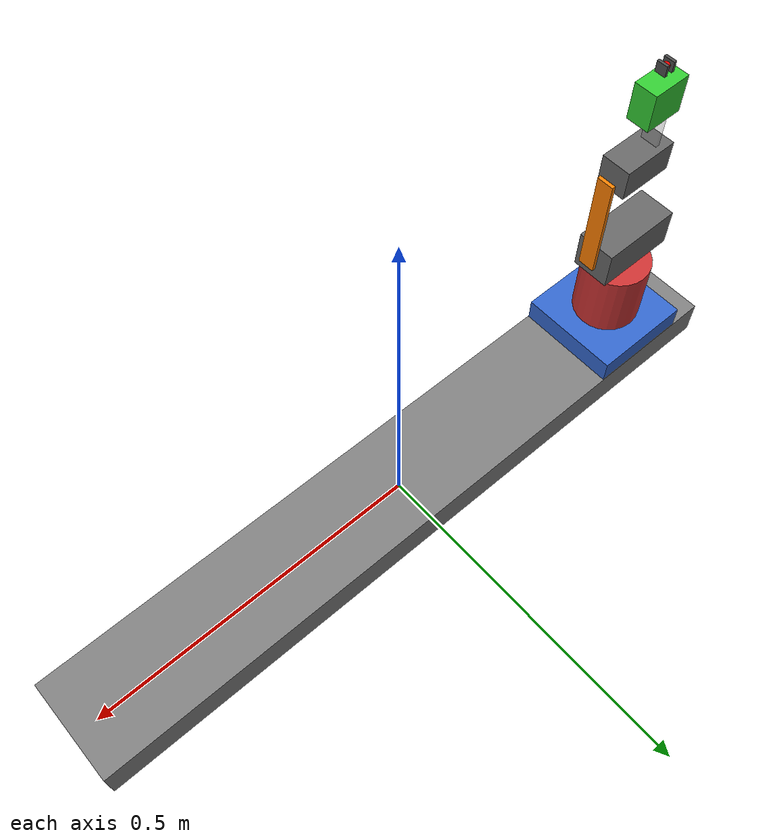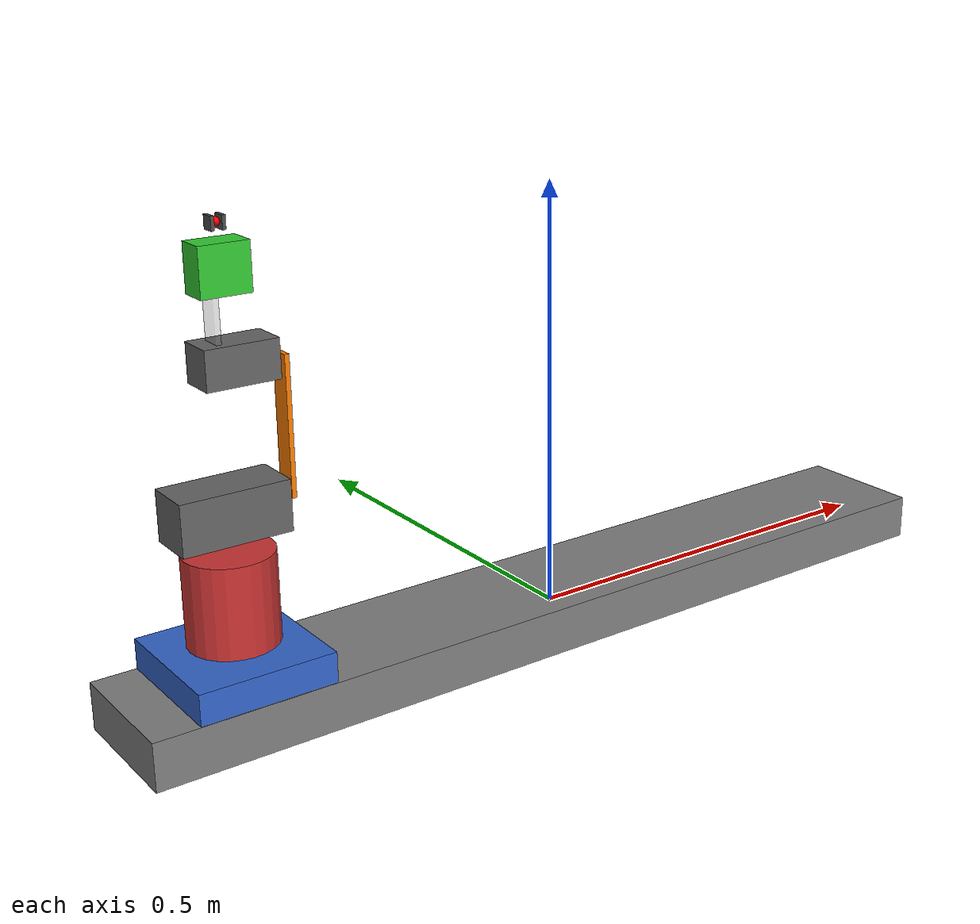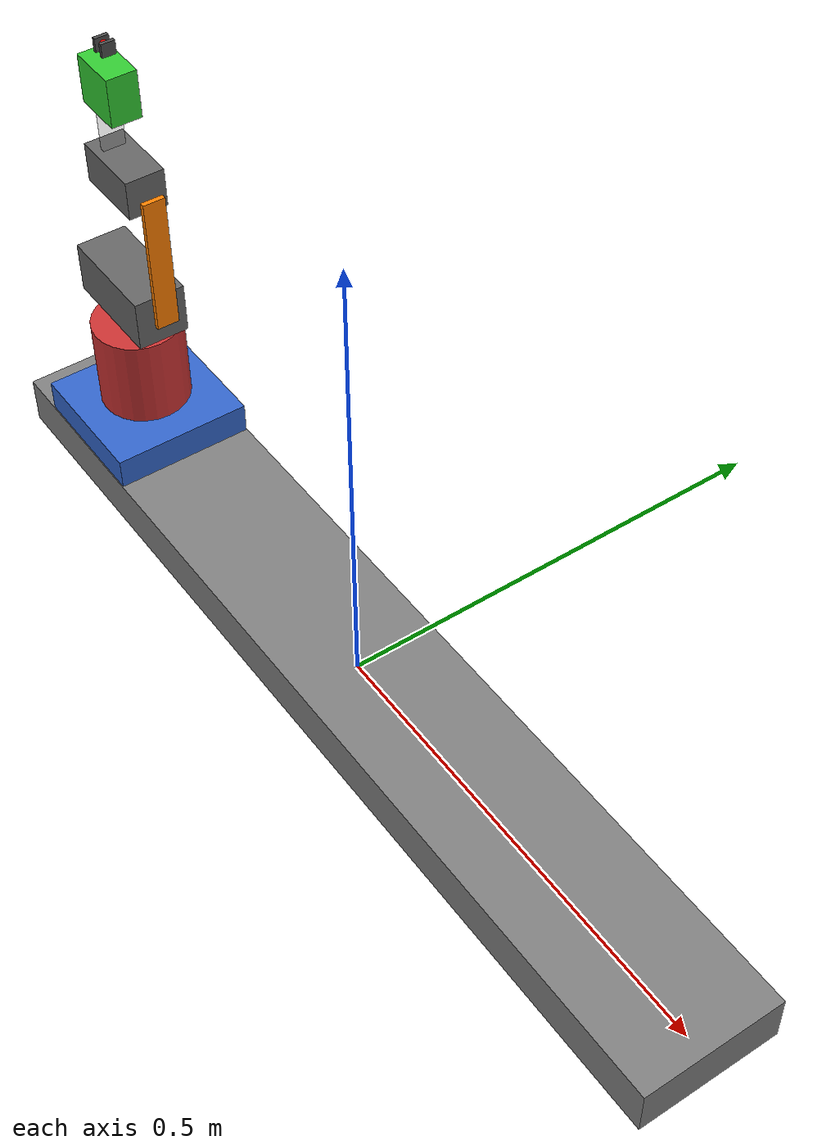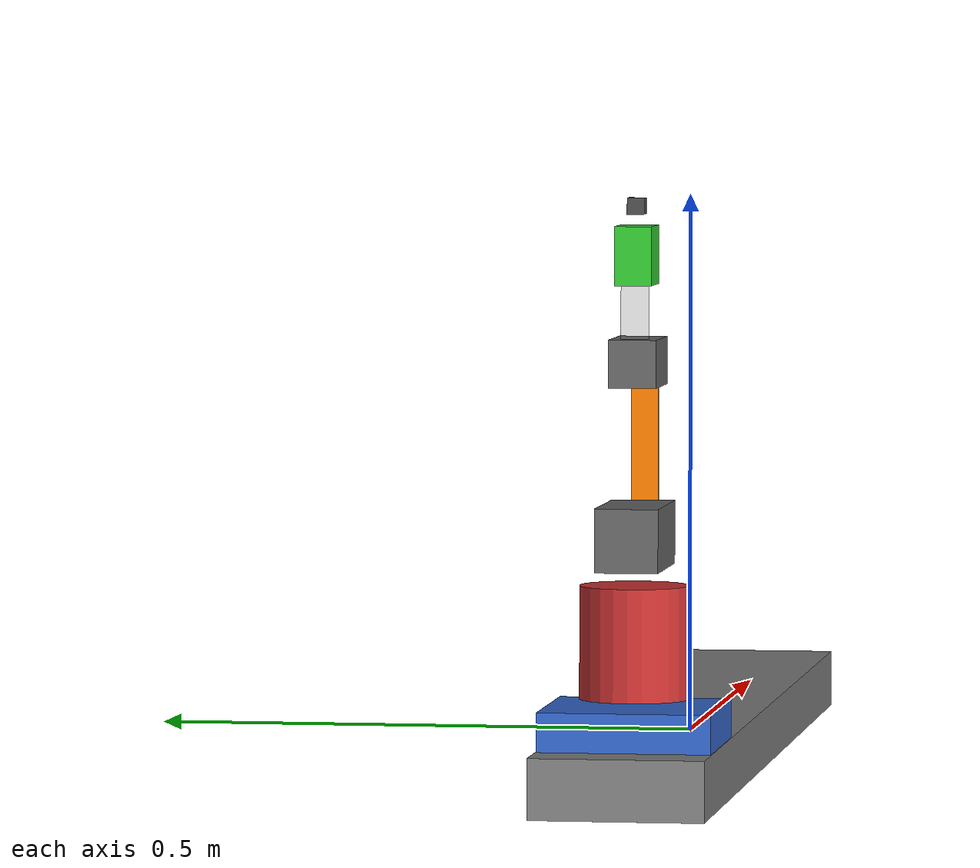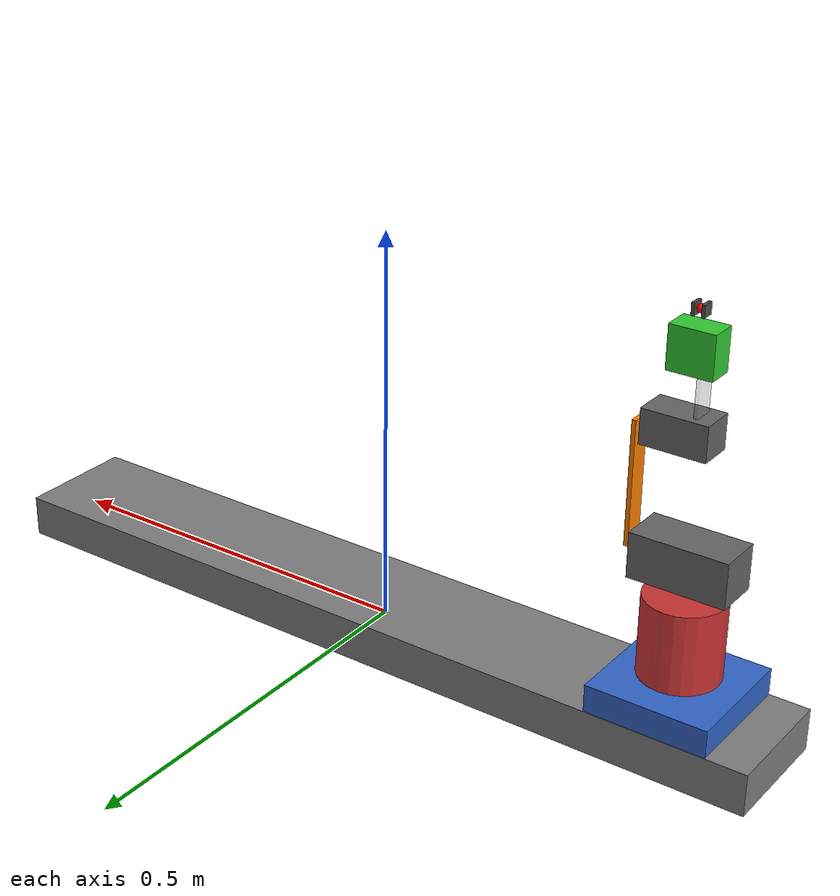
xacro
<?xml version="1.0"?>
<robot xmlns:xacro="http://www.ros.org/wiki/xacro" name="prep_bot">
    <xacro:arg name="initial_positions_file" default="initial_positions.yaml" />

    <!-- Import prep_bot urdf file -->
    <xacro:include filename="$(find prep_bot)/urdf/robot.urdf" />

    <!-- Import control_xacro -->
    <xacro:include filename="prep_bot.ros2_control.xacro" />

    <xacro:prep_bot_ros2_control name="FakeSystem" initial_positions_file="$(arg initial_positions_file)"/>

</robot>

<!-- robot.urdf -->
<robot name="prep_bot">

  <link name="base_link">
    <visual>
      <origin xyz="0 0 0" rpy="0 0 0"/>
      <geometry>
        <box size="1.0668 0.1549 0.0540"/>  <!-- 42" × 6.1" × 2.125" rail -->
      </geometry>
      <material name="gray">
        <color rgba="0.5 0.5 0.5 1"/>
      </material>
    </visual>
    <collision>
      <origin xyz="0 0 0" rpy="0 0 0"/>
      <geometry>
        <box size="1.0668 0.1549 0.0540"/>
      </geometry>
    </collision>
  </link>

  <link name="linear_carriage">
    <visual>
      <origin xyz="0 0 0" rpy="0 0 0"/>
      <geometry>
        <box size="0.1524 0.1533 0.0617"/>  <!-- 6" × 6.035" × 2.43" carriage -->
      </geometry>
      <material name="blue">
        <color rgba="0.2 0.4 0.8 1"/>
      </material>
    </visual>
    <collision>
      <origin xyz="0 0 0" rpy="0 0 0"/>
      <geometry>
        <box size="0.1524 0.1533 0.0617"/>
      </geometry>
    </collision>
  </link>

  <joint name="linear_joint" type="prismatic">
    <parent link="base_link"/>
    <child link="linear_carriage"/>
    <origin xyz="-0.4061 0 0.0308" rpy="0 0 0"/>  <!-- Start at left endstop (home), offset to center rail visually -->
    <axis xyz="1 0 0"/>
    <limit lower="0" upper="0.8123" effort="100" velocity="0.1"/>  <!-- 0 (left) to 31.98" (right) -->
  </joint>

  <link name="rotation_link">
    <!-- Rotation cylinder -->
    <visual>
      <origin xyz="0 0 0" rpy="0 0 0"/>
      <geometry>
        <cylinder length="0.1" radius="0.0489"/>  <!-- 100mm height, 48.9mm radius -->
      </geometry>
      <material name="red">
        <color rgba="0.8 0.2 0.2 1"/>
      </material>
    </visual>
    <collision>
      <origin xyz="0 0 0" rpy="0 0 0"/>
      <geometry>
        <cylinder length="0.1" radius="0.0489"/>
      </geometry>
    </collision>

    <!-- Shoulder motor (part of rotation_link) -->
    <visual>
      <origin xyz="0 0 0.093" rpy="0 0 0"/>
      <geometry>
        <box size="0.120 0.056 0.056"/>  <!-- 56mm × 56mm × 120mm motor -->
      </geometry>
      <material name="motor_gray">
        <color rgba="0.4 0.4 0.4 1"/>
      </material>
    </visual>
    <collision>
      <origin xyz="0 0 0.093" rpy="0 0 0"/>
      <geometry>
        <box size="0.120 0.056 0.056"/>
      </geometry>
    </collision>
  </link>

  <!-- TEMPORARY: Fixed rotation joint while motor is broken -->
  <joint name="rotation_joint" type="fixed">
    <parent link="linear_carriage"/>
    <child link="rotation_link"/>
    <origin xyz="0 0 0.0872" rpy="0 0 0"/>
  </joint>

  <link name="shoulder_link">
    <!-- Shoulder link plate -->
    <visual>
      <origin xyz="0.07129 0 0.0762" rpy="0 0 1.5708"/>
      <geometry>
        <box size="0.0244 0.0053 0.1524"/>
      </geometry>
      <material name="orange">
        <color rgba="1.0 0.5 0.0 1"/>
      </material>
    </visual>
    <collision>
      <origin xyz="0.07129 0 0.0762" rpy="0 0 1.5708"/>
      <geometry>
        <box size="0.0244 0.0053 0.1524"/>
      </geometry>
    </collision>

    <!-- Elbow motor (part of shoulder_link) -->
    <visual>
      <origin xyz="0.02 0 0.1524" rpy="0 0 0"/>
      <geometry>
        <box size="0.080 0.0423 0.0423"/>  <!-- 80mm × 42.3mm × 42.3mm motor -->
      </geometry>
      <material name="motor_gray">
        <color rgba="0.4 0.4 0.4 1"/>
      </material>
    </visual>
    <collision>
      <origin xyz="0.02 0 0.1524" rpy="0 0 0"/>
      <geometry>
        <box size="0.080 0.0423 0.0423"/>
      </geometry>
    </collision>
  </link>

  <joint name="shoulder_joint" type="revolute">
    <parent link="rotation_link"/>
    <child link="shoulder_link"/>
    <origin xyz="0 0 0.093" rpy="0 0 0"/>  <!-- 43mm above cylinder top, first hole aligns here -->
    <axis xyz="1 0 0"/>  <!-- X-axis rotation (pitch) -->
    <limit lower="-2.00" upper="2.37" effort="50" velocity="1.0"/>  <!-- ±90 degrees, adjust as needed -->
  </joint>

  <link name="elbow_link">
    <visual>
      <!-- 68.6mm / 2 -->
      <origin xyz="0 0 0.0343" rpy="0 0 1.5708"/>
      <geometry>
        <box size="0.0244 0.0053 0.0686"/>
      </geometry>
      <material name="transparent_gray">
        <color rgba="0.5 0.5 0.5 0.3"/>
      </material>
    </visual>
    <collision>
      <!-- Minimal collision sphere to satisfy URDF requirements -->
      <origin xyz="0 0 0.0343" rpy="0 0 0"/>
      <geometry>
        <sphere radius="0.005"/>
      </geometry>
    </collision>
  </link>

  <joint name="elbow_joint" type="revolute">
    <parent link="shoulder_link"/>
    <child link="elbow_link"/>
    <origin xyz="0 0 0.1524" rpy="0 0 0"/>  <!-- 152.4mm above shoulder joint -->
    <axis xyz="1 0 0"/>  <!-- X-axis rotation (pitch) -->
    <limit lower="-2.61" upper="2.61" effort="50" velocity="1.0"/>  <!-- ±150 degrees-->
  </joint>

  <link name="gripper_body">
    <visual>
      <origin xyz="0 0 0" rpy="0 0 0"/>
      <geometry>
        <box size="0.054761 0.032735 0.051896"/>  <!-- 54.761mm × 32.735mm × 51.896mm gripper body -->
      </geometry>
      <material name="green">
        <color rgba="0.2 0.8 0.2 1"/>
      </material>
    </visual>
    <collision>
      <origin xyz="0 0 0" rpy="0 0 0"/>
      <geometry>
        <box size="0.054761 0.032735 0.051896"/>
      </geometry>
    </collision>
  </link>

  <joint name="gripper_joint" type="fixed">
    <parent link="elbow_link"/>
    <child link="gripper_body"/>
     <!-- bottom is 68.6 + 51.896/2 above elbow joint -->
    <origin xyz="0.01 0 0.0945" rpy="0 0 0"/>  <!-- Shifted 10mm in X for print tolerance -->
  </joint>

  <!-- Left gripper paddle -->
  <link name="gripper_left">
    <visual>
      <origin xyz="0 0 0" rpy="0 0 0"/>
      <geometry>
        <box size="0.00382 0.015 0.014456"/>
      </geometry>
      <material name="dark_gray">
        <color rgba="0.3 0.3 0.3 1"/>
      </material>
    </visual>
    <collision>
      <origin xyz="0.00059 0 0" rpy="0 0 0"/>
      <geometry>
        <box size="0.005 0.03 0.02"/>
      </geometry>
    </collision>
  </link>

  <joint name="gripper_left_joint" type="prismatic">
    <parent link="elbow_link"/>
    <child link="gripper_left"/>
    <origin xyz="0.01591 0 0.137737" rpy="0 0 0"/>  <!-- Closed position: 4mm from center + 1.91mm + 10mm offset -->
    <axis xyz="1 0 0"/>  <!-- X-axis (open/close) -->
    <limit lower="0" upper="0.0225" effort="10" velocity="0.05"/>  <!-- 0 to 22.5mm travel (close to open) -->
  </joint>

  <!-- Right gripper paddle -->
  <link name="gripper_right">
    <visual>
      <origin xyz="0 0 0" rpy="0 0 0"/>
      <geometry>
        <box size="0.00382 0.015 0.014456"/>
      </geometry>
      <material name="dark_gray">
        <color rgba="0.3 0.3 0.3 1"/>
      </material>
    </visual>
    <collision>
      <origin xyz="-0.00059 0 0" rpy="0 0 0"/>
      <geometry>
        <box size="0.005 0.03 0.02"/>
      </geometry>
    </collision>
  </link>

  <joint name="gripper_right_joint" type="prismatic">
    <parent link="elbow_link"/>
    <child link="gripper_right"/>
    <origin xyz="0.00409 0 0.137737" rpy="0 0 0"/>  <!-- Closed position: -4mm from center - 1.91mm + 10mm offset -->
    <axis xyz="1 0 0"/>  <!-- Same X-axis -->
    <limit lower="-0.0225" upper="0" effort="10" velocity="0.05"/>  <!-- -22.5mm to 0 travel (open to close) -->
    <mimic joint="gripper_left_joint" multiplier="-1" offset="0"/>  <!-- Mirrors left paddle -->
  </joint>

  <!-- Grasp frame - point between gripper paddles -->
  <link name="grasp_frame">
    <visual>
      <geometry>
        <sphere radius="0.005"/>
      </geometry>
      <material name="red">
        <color rgba="1 0 0 1"/>
      </material>
    </visual>
  </link>

  <joint name="grasp_frame_joint" type="fixed">
    <parent link="elbow_link"/>
    <child link="grasp_frame"/>
    <origin xyz="0.01 0 0.138" rpy="0 0 0"/>  <!-- Shifted 10mm in X to match gripper_body offset, 138mm in Z to center between paddles -->
  </joint>

</robot>
